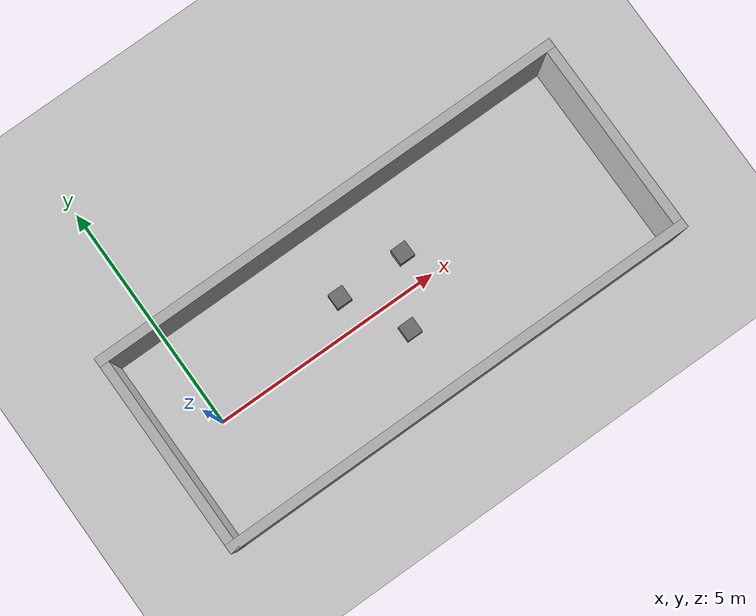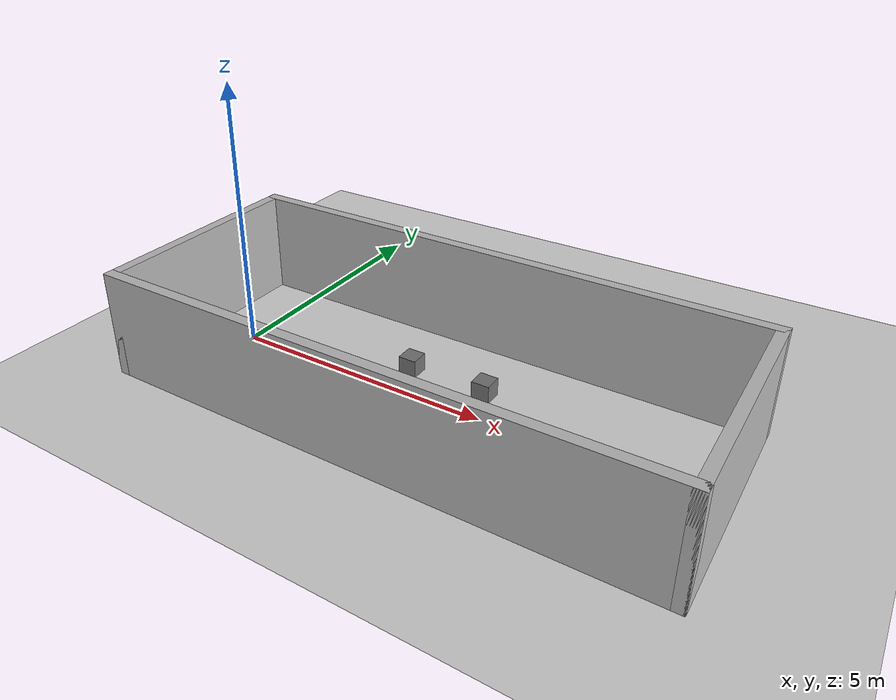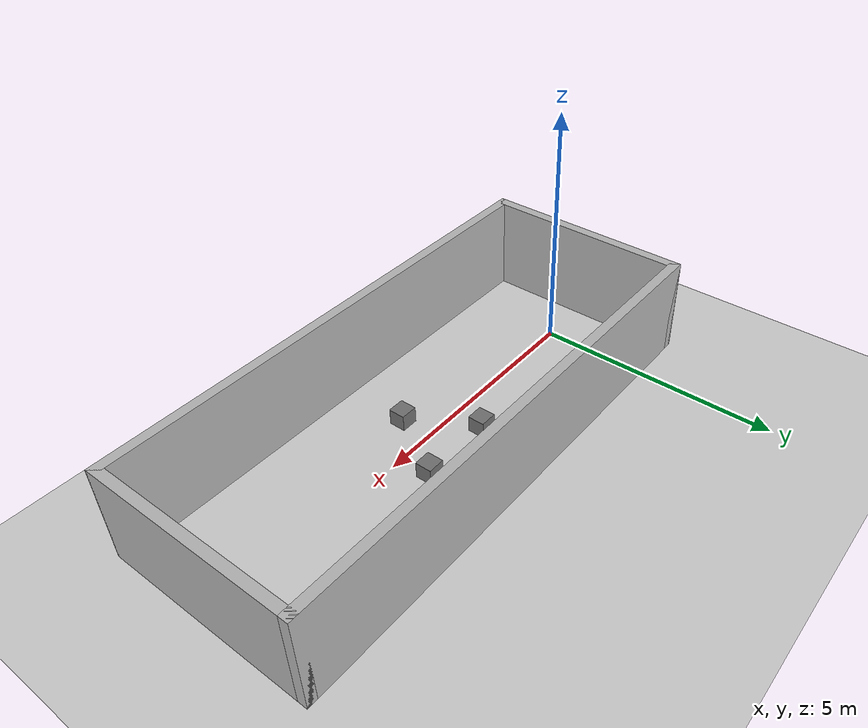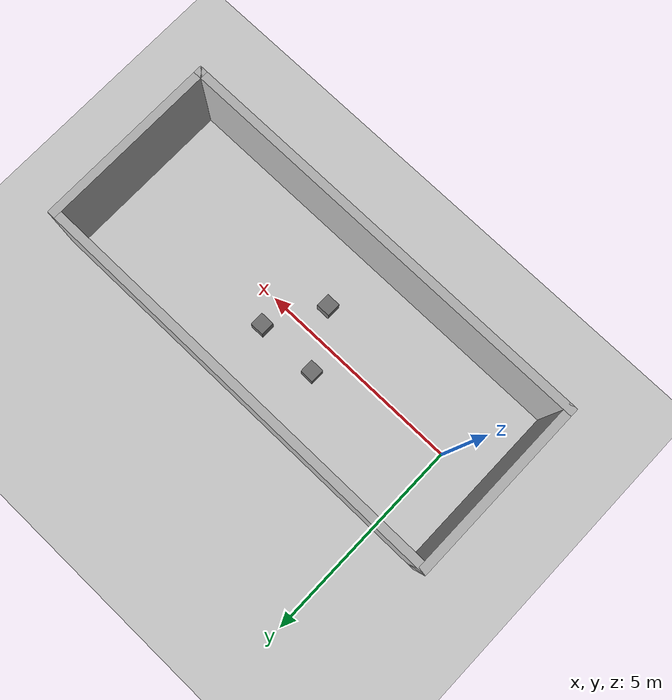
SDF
<?xml version="1.0" ?>
<sdf version="1.9">
  <world name="test_new_corridor_static3_boxes">
    <physics name="1ms" type="ignored">
      <max_step_size>0.001</max_step_size>
      <real_time_factor>1</real_time_factor>
      <real_time_update_rate>1000</real_time_update_rate>
    </physics>

    <plugin name="ignition::gazebo::systems::Physics" filename="ignition-gazebo-physics-system"/>
    <plugin name="ignition::gazebo::systems::UserCommands" filename="ignition-gazebo-user-commands-system"/>
    <plugin name="ignition::gazebo::systems::SceneBroadcaster" filename="ignition-gazebo-scene-broadcaster-system"/>
    <plugin name="ignition::gazebo::systems::Contact" filename="ignition-gazebo-contact-system"/>

    <light name="sun" type="directional">
      <pose>0 0 10 0 0 0</pose>
      <cast_shadows>true</cast_shadows>
      <intensity>1.1</intensity>
      <direction>-0.5 0.1 -0.9</direction>
      <diffuse>0.9 0.9 0.9 1</diffuse>
      <specular>0.2 0.2 0.2 1</specular>
    </light>

    <model name="ground_plane">
      <static>true</static>
      <link name="link">
        <collision name="collision">
          <geometry><plane><normal>0 0 1</normal><size>100 100</size></plane></geometry>
        </collision>
        <visual name="visual">
          <geometry><plane><normal>0 0 1</normal><size>100 100</size></plane></geometry>
          <material><ambient>0.82 0.82 0.82 1</ambient><diffuse>0.82 0.82 0.82 1</diffuse></material>
        </visual>
      </link>
    </model>

    <model name="corridor_border">
      <static>true</static>
      <link name="north">
        <pose>4.00 2.10 1 0 0 0</pose>
        <collision name="collision"><geometry><box><size>10.40 0.20 2</size></box></geometry></collision>
        <visual name="visual"><geometry><box><size>10.40 0.20 2</size></box></geometry></visual>
      </link>
      <link name="south">
        <pose>4.00 -2.10 1 0 0 0</pose>
        <collision name="collision"><geometry><box><size>10.40 0.20 2</size></box></geometry></collision>
        <visual name="visual"><geometry><box><size>10.40 0.20 2</size></box></geometry></visual>
      </link>
      <link name="west">
        <pose>-1.10 0 1 0 0 0</pose>
        <collision name="collision"><geometry><box><size>0.20 4.40 2</size></box></geometry></collision>
        <visual name="visual"><geometry><box><size>0.20 4.40 2</size></box></geometry></visual>
      </link>
      <link name="east">
        <pose>9.10 0 1 0 0 0</pose>
        <collision name="collision"><geometry><box><size>0.20 4.40 2</size></box></geometry></collision>
        <visual name="visual"><geometry><box><size>0.20 4.40 2</size></box></geometry></visual>
      </link>
    </model>

    <model name="static_box_0">
      <pose>3.250 0.650 0.170 0 0 0</pose>
      <static>true</static>
      <link name="link">
        <visual name="visual">
          <geometry><box><size>0.34 0.34 0.34</size></box></geometry>
          <material><ambient>0.45 0.45 0.45 1</ambient><diffuse>0.45 0.45 0.45 1</diffuse></material>
        </visual>
        <collision name="collision">
          <geometry><box><size>0.34 0.34 0.34</size></box></geometry>
        </collision>
      </link>
    </model>

    <model name="static_box_1">
      <pose>4.000 -0.650 0.170 0 0 0</pose>
      <static>true</static>
      <link name="link">
        <visual name="visual">
          <geometry><box><size>0.34 0.34 0.34</size></box></geometry>
          <material><ambient>0.45 0.45 0.45 1</ambient><diffuse>0.45 0.45 0.45 1</diffuse></material>
        </visual>
        <collision name="collision">
          <geometry><box><size>0.34 0.34 0.34</size></box></geometry>
        </collision>
      </link>
    </model>

    <model name="static_box_2">
      <pose>4.750 0.650 0.170 0 0 0</pose>
      <static>true</static>
      <link name="link">
        <visual name="visual">
          <geometry><box><size>0.34 0.34 0.34</size></box></geometry>
          <material><ambient>0.45 0.45 0.45 1</ambient><diffuse>0.45 0.45 0.45 1</diffuse></material>
        </visual>
        <collision name="collision">
          <geometry><box><size>0.34 0.34 0.34</size></box></geometry>
        </collision>
      </link>
    </model>
  </world>
</sdf>
